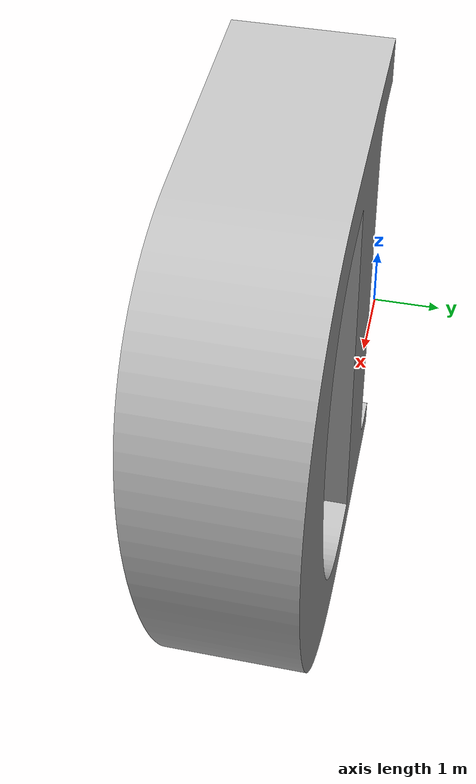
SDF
<sdf version='1.5'>
  <model name='text_D'>
    <link name='D'>
      <collision name='D_inertia_collision'>
        <pose frame=''>0 0 6.05 1.570796 -0 0</pose>
        <geometry>
          <mesh>
            <scale>0.2 0.2 0.2</scale>
            <uri>model://text_description/meshes/D.stl</uri>
          </mesh>
        </geometry>
        <surface>
          <contact>
            <ode>
              <min_depth>0.001</min_depth>
              <max_vel>0</max_vel>
            </ode>
          </contact>
          <friction>
            <ode/>
          </friction>
        </surface>
      </collision>
      <visual name='D_inertia_visual'>
        <pose frame=''>0 0 6.05 1.570796 -0 0</pose>
        <geometry>
          <mesh>
            <scale>0.2 0.2 0.2</scale>
            <uri>model://text_description/meshes/D.stl</uri>
          </mesh>
        </geometry>
      </visual>
      <kinematic>1</kinematic>
      <velocity_decay/>
    </link>
  </model>
</sdf>
